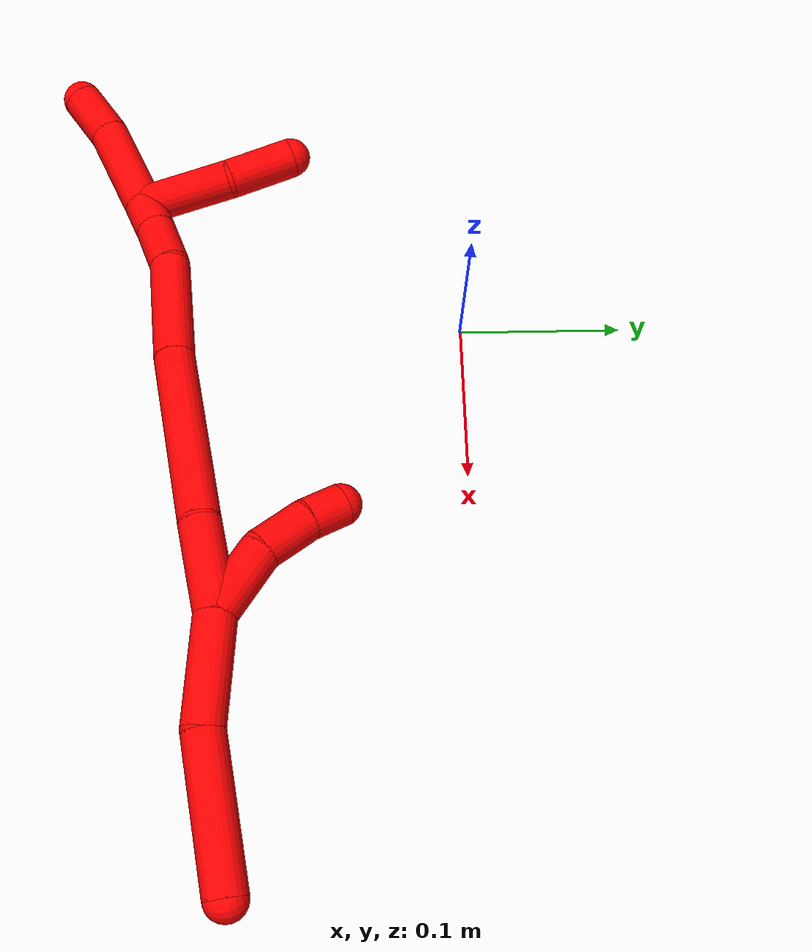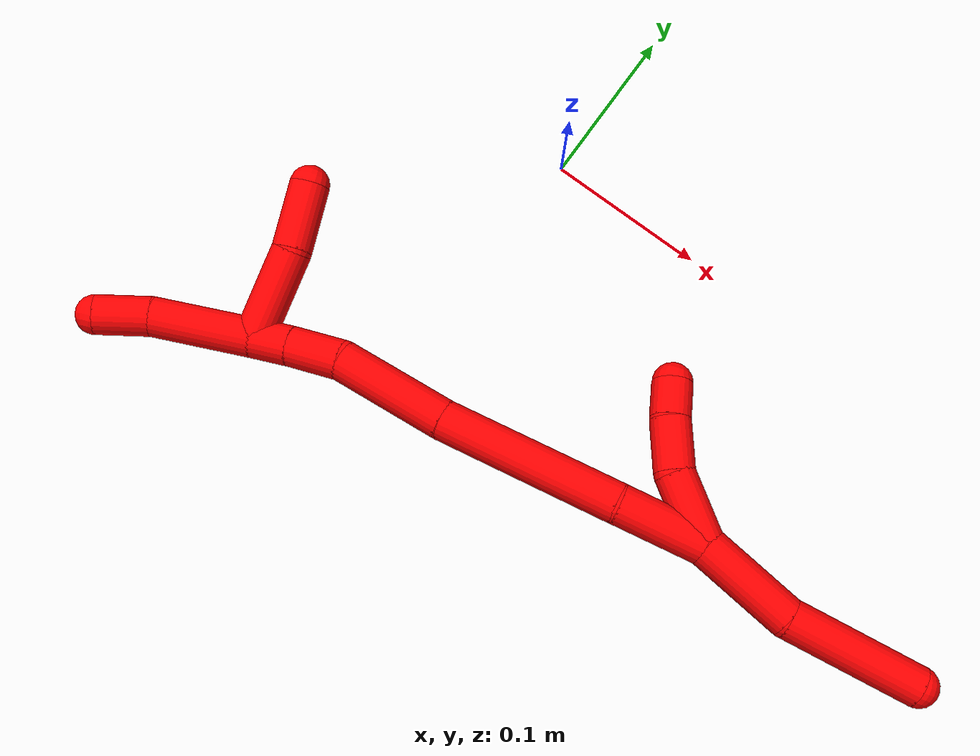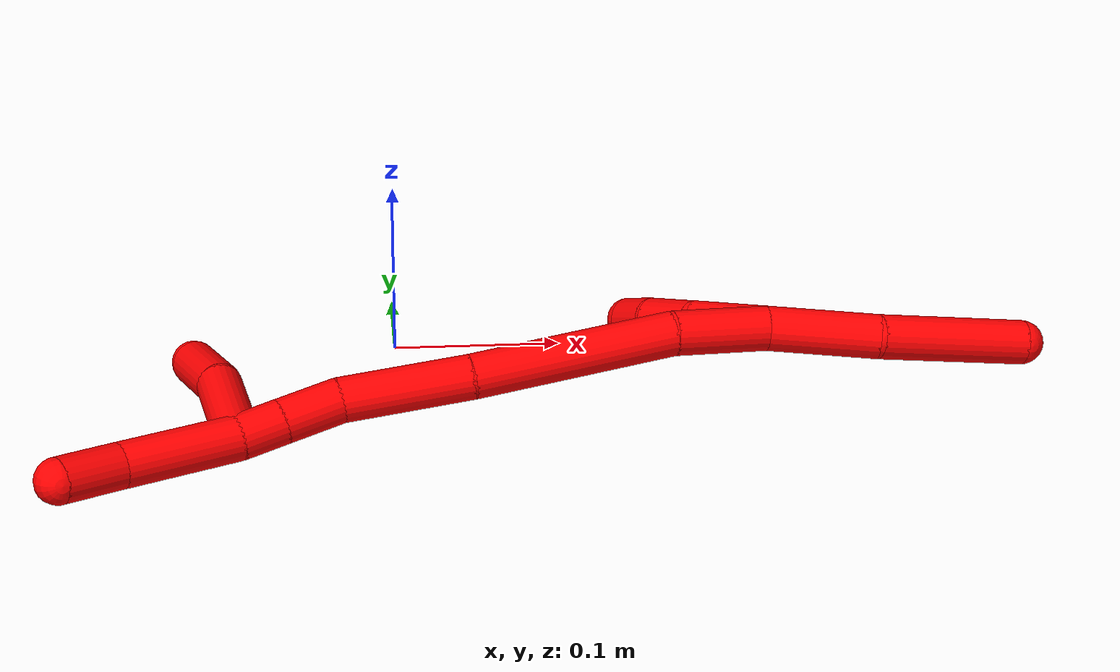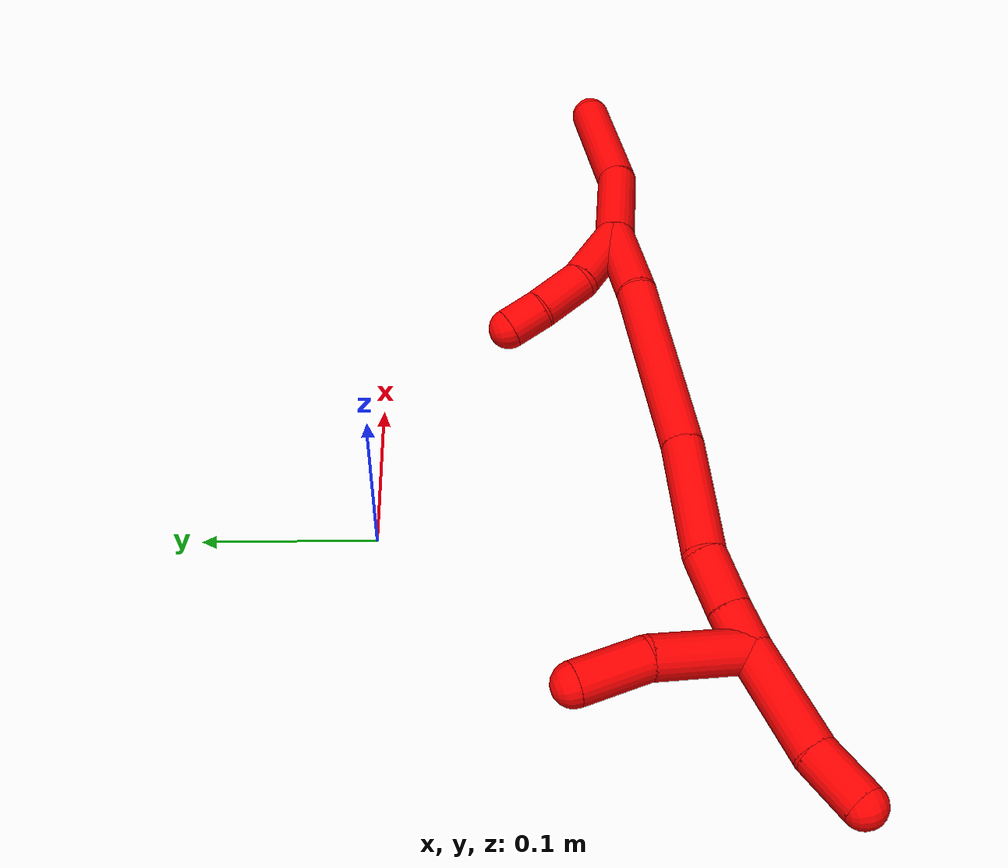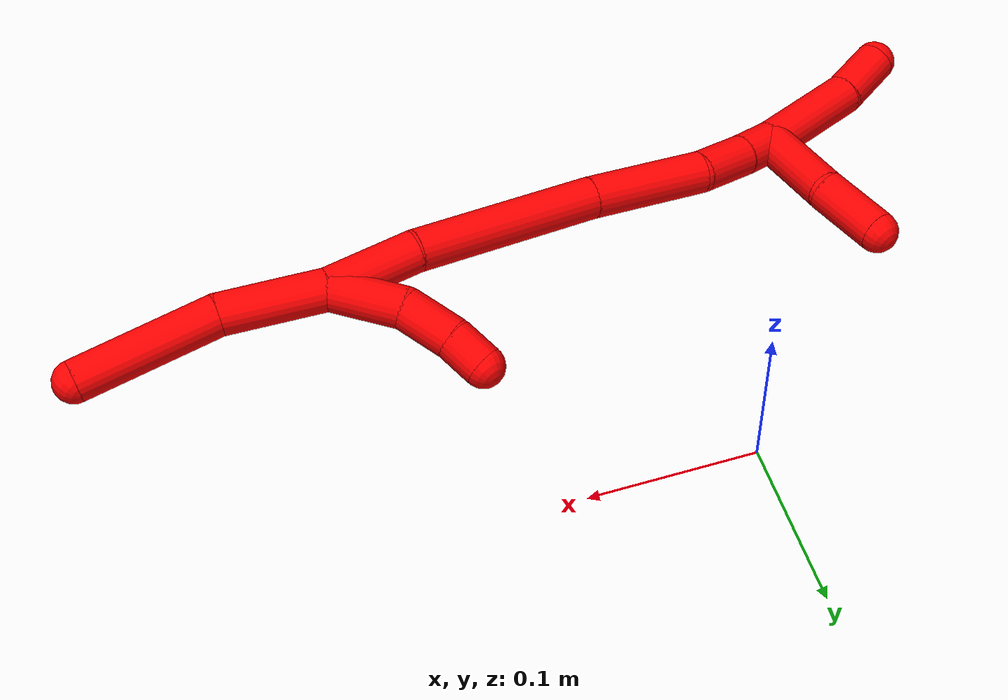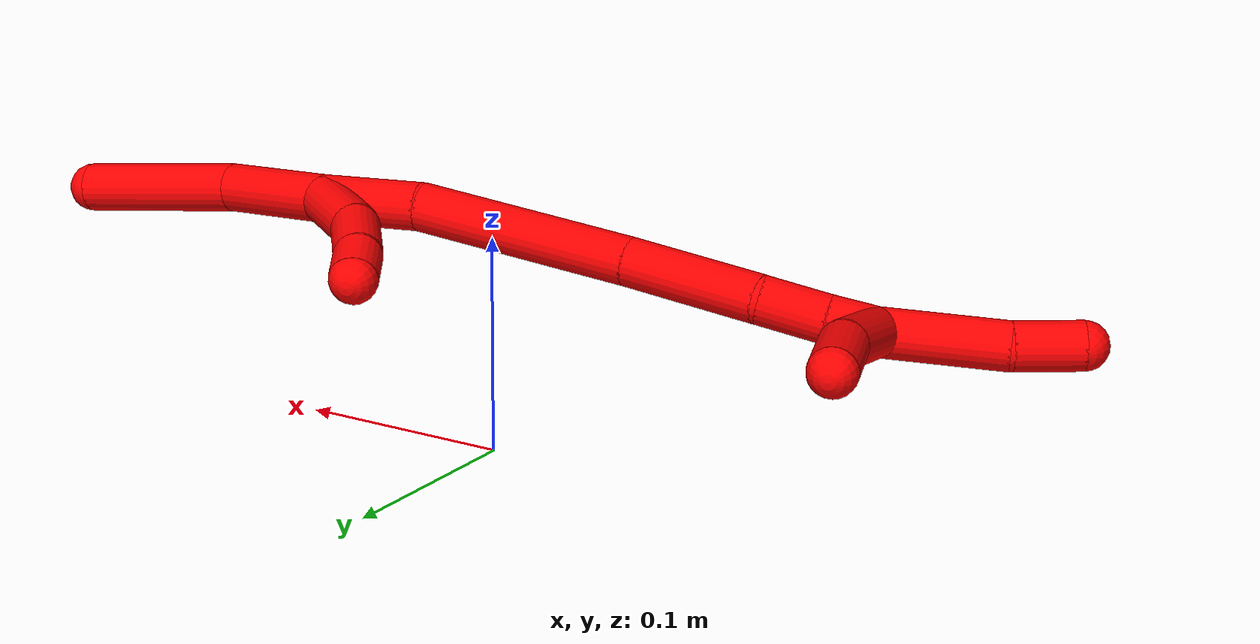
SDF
<sdf version="1.7">
 <world name="default">
  <model name="2">
   <static>0</static>
   <link name="2">
    <collision name="collision-cylinder-e_1_2_8">
     <pose>0.028937 -0.001935 0.012354 0.155394 1.1629 0.102248</pose>
     <geometry><cylinder><radius>0.0125</radius><length>0.063046</length></cylinder></geometry>
     <surface>
      <friction><ode><mu>1.16</mu><mu2>1.16</mu2><slip1>0</slip1><slip2>0</slip2></ode></friction>
      <contact><ode><kp>1e+06</kp><kd>1</kd><max_vel>0</max_vel><min_depth>0.001</min_depth></ode></contact>
     </surface>
    </collision>
    <visual name="visual-cylinder-e_1_2_8">
     <pose>0.028937 -0.001935 0.012354 0.155394 1.1629 0.102248</pose>
     <geometry><cylinder><radius>0.0125</radius><length>0.063046</length></cylinder></geometry>
     <material><ambient>1 0 0 1</ambient></material>
    </visual>
    <collision name="collision-cylinder-e_2_8_6">
     <pose>0.10068 -0.006862 0.0317 0.404185 1.39496 0.340076</pose>
     <geometry><cylinder><radius>0.0125</radius><length>0.086954</length></cylinder></geometry>
     <surface>
      <friction><ode><mu>1.16</mu><mu2>1.16</mu2><slip1>0</slip1><slip2>0</slip2></ode></friction>
      <contact><ode><kp>1e+06</kp><kd>1</kd><max_vel>0</max_vel><min_depth>0.001</min_depth></ode></contact>
     </surface>
    </collision>
    <visual name="visual-cylinder-e_2_8_6">
     <pose>0.10068 -0.006862 0.0317 0.404185 1.39496 0.340076</pose>
     <geometry><cylinder><radius>0.0125</radius><length>0.086954</length></cylinder></geometry>
     <material><ambient>1 0 0 1</ambient></material>
    </visual>
    <collision name="collision-cylinder-e_1_2_9">
     <pose>-0.013802 -0.000658 -0.017365 3.10371 -0.671216 -3.03307</pose>
     <geometry><cylinder><radius>0.0125</radius><length>0.044383</length></cylinder></geometry>
     <surface>
      <friction><ode><mu>1.16</mu><mu2>1.16</mu2><slip1>0</slip1><slip2>0</slip2></ode></friction>
      <contact><ode><kp>1e+06</kp><kd>1</kd><max_vel>0</max_vel><min_depth>0.001</min_depth></ode></contact>
     </surface>
    </collision>
    <visual name="visual-cylinder-e_1_2_9">
     <pose>-0.013802 -0.000658 -0.017365 3.10371 -0.671216 -3.03307</pose>
     <geometry><cylinder><radius>0.0125</radius><length>0.044383</length></cylinder></geometry>
     <material><ambient>1 0 0 1</ambient></material>
    </visual>
    <collision name="collision-cylinder-e_2_9_10">
     <pose>-0.03299 -0.002816 -0.050046 3.04397 -0.336707 -2.58186</pose>
     <geometry><cylinder><radius>0.0125</radius><length>0.03261</length></cylinder></geometry>
     <surface>
      <friction><ode><mu>1.16</mu><mu2>1.16</mu2><slip1>0</slip1><slip2>0</slip2></ode></friction>
      <contact><ode><kp>1e+06</kp><kd>1</kd><max_vel>0</max_vel><min_depth>0.001</min_depth></ode></contact>
     </surface>
    </collision>
    <visual name="visual-cylinder-e_2_9_10">
     <pose>-0.03299 -0.002816 -0.050046 3.04397 -0.336707 -2.58186</pose>
     <geometry><cylinder><radius>0.0125</radius><length>0.03261</length></cylinder></geometry>
     <material><ambient>1 0 0 1</ambient></material>
    </visual>
    <collision name="collision-cylinder-e_3_10_5">
     <pose>-0.040515 -0.006147 -0.076516 2.97891 -0.186904 -1.70986</pose>
     <geometry><cylinder><radius>0.0125</radius><length>0.023008</length></cylinder></geometry>
     <surface>
      <friction><ode><mu>1.16</mu><mu2>1.16</mu2><slip1>0</slip1><slip2>0</slip2></ode></friction>
      <contact><ode><kp>1e+06</kp><kd>1</kd><max_vel>0</max_vel><min_depth>0.001</min_depth></ode></contact>
     </surface>
    </collision>
    <visual name="visual-cylinder-e_3_10_5">
     <pose>-0.040515 -0.006147 -0.076516 2.97891 -0.186904 -1.70986</pose>
     <geometry><cylinder><radius>0.0125</radius><length>0.023008</length></cylinder></geometry>
     <material><ambient>1 0 0 1</ambient></material>
    </visual>
    <collision name="collision-cylinder-e_1_2_11">
     <pose>-0.027071 -0.000445 -0.003708 3.02217 -1.43369 -3.00461</pose>
     <geometry><cylinder><radius>0.0125</radius><length>0.054654</length></cylinder></geometry>
     <surface>
      <friction><ode><mu>1.16</mu><mu2>1.16</mu2><slip1>0</slip1><slip2>0</slip2></ode></friction>
      <contact><ode><kp>1e+06</kp><kd>1</kd><max_vel>0</max_vel><min_depth>0.001</min_depth></ode></contact>
     </surface>
    </collision>
    <visual name="visual-cylinder-e_1_2_11">
     <pose>-0.027071 -0.000445 -0.003708 3.02217 -1.43369 -3.00461</pose>
     <geometry><cylinder><radius>0.0125</radius><length>0.054654</length></cylinder></geometry>
     <material><ambient>1 0 0 1</ambient></material>
    </visual>
    <collision name="collision-cylinder-e_2_11_12">
     <pose>-0.109686 -0.01107 -0.016851 2.31819 -1.32594 -2.12185</pose>
     <geometry><cylinder><radius>0.0125</radius><length>0.114503</length></cylinder></geometry>
     <surface>
      <friction><ode><mu>1.16</mu><mu2>1.16</mu2><slip1>0</slip1><slip2>0</slip2></ode></friction>
      <contact><ode><kp>1e+06</kp><kd>1</kd><max_vel>0</max_vel><min_depth>0.001</min_depth></ode></contact>
     </surface>
    </collision>
    <visual name="visual-cylinder-e_2_11_12">
     <pose>-0.109686 -0.01107 -0.016851 2.31819 -1.32594 -2.12185</pose>
     <geometry><cylinder><radius>0.0125</radius><length>0.114503</length></cylinder></geometry>
     <material><ambient>1 0 0 1</ambient></material>
    </visual>
    <collision name="collision-cylinder-e_3_12_13">
     <pose>-0.199624 -0.027023 -0.035099 2.56164 -1.2735 -2.37456</pose>
     <geometry><cylinder><radius>0.0125</radius><length>0.071944</length></cylinder></geometry>
     <surface>
      <friction><ode><mu>1.16</mu><mu2>1.16</mu2><slip1>0</slip1><slip2>0</slip2></ode></friction>
      <contact><ode><kp>1e+06</kp><kd>1</kd><max_vel>0</max_vel><min_depth>0.001</min_depth></ode></contact>
     </surface>
    </collision>
    <visual name="visual-cylinder-e_3_12_13">
     <pose>-0.199624 -0.027023 -0.035099 2.56164 -1.2735 -2.37456</pose>
     <geometry><cylinder><radius>0.0125</radius><length>0.071944</length></cylinder></geometry>
     <material><ambient>1 0 0 1</ambient></material>
    </visual>
    <collision name="collision-cylinder-e_4_13_14">
     <pose>-0.250278 -0.037493 -0.044159 1.62293 -1.28936 -1.33981</pose>
     <geometry><cylinder><radius>0.0125</radius><length>0.033852</length></cylinder></geometry>
     <surface>
      <friction><ode><mu>1.16</mu><mu2>1.16</mu2><slip1>0</slip1><slip2>0</slip2></ode></friction>
      <contact><ode><kp>1e+06</kp><kd>1</kd><max_vel>0</max_vel><min_depth>0.001</min_depth></ode></contact>
     </surface>
    </collision>
    <visual name="visual-cylinder-e_4_13_14">
     <pose>-0.250278 -0.037493 -0.044159 1.62293 -1.28936 -1.33981</pose>
     <geometry><cylinder><radius>0.0125</radius><length>0.033852</length></cylinder></geometry>
     <material><ambient>1 0 0 1</ambient></material>
    </visual>
    <collision name="collision-cylinder-e_5_14_1">
     <pose>-0.278611 -0.045483 -0.043964 1.43819 -1.30206 -1.17641</pose>
     <geometry><cylinder><radius>0.0125</radius><length>0.025046</length></cylinder></geometry>
     <surface>
      <friction><ode><mu>1.16</mu><mu2>1.16</mu2><slip1>0</slip1><slip2>0</slip2></ode></friction>
      <contact><ode><kp>1e+06</kp><kd>1</kd><max_vel>0</max_vel><min_depth>0.001</min_depth></ode></contact>
     </surface>
    </collision>
    <visual name="visual-cylinder-e_5_14_1">
     <pose>-0.278611 -0.045483 -0.043964 1.43819 -1.30206 -1.17641</pose>
     <geometry><cylinder><radius>0.0125</radius><length>0.025046</length></cylinder></geometry>
     <material><ambient>1 0 0 1</ambient></material>
    </visual>
    <collision name="collision-cylinder-e_1_1_15">
     <pose>-0.322769 -0.052925 -0.040875 1.00213 -1.41862 -0.878879</pose>
     <geometry><cylinder><radius>0.0125</radius><length>0.064918</length></cylinder></geometry>
     <surface>
      <friction><ode><mu>1.16</mu><mu2>1.16</mu2><slip1>0</slip1><slip2>0</slip2></ode></friction>
      <contact><ode><kp>1e+06</kp><kd>1</kd><max_vel>0</max_vel><min_depth>0.001</min_depth></ode></contact>
     </surface>
    </collision>
    <visual name="visual-cylinder-e_1_1_15">
     <pose>-0.322769 -0.052925 -0.040875 1.00213 -1.41862 -0.878879</pose>
     <geometry><cylinder><radius>0.0125</radius><length>0.064918</length></cylinder></geometry>
     <material><ambient>1 0 0 1</ambient></material>
    </visual>
    <collision name="collision-cylinder-e_2_15_4">
     <pose>-0.371711 -0.058454 -0.033581 0.289451 -1.29093 -0.218637</pose>
     <geometry><cylinder><radius>0.0125</radius><length>0.035082</length></cylinder></geometry>
     <surface>
      <friction><ode><mu>1.16</mu><mu2>1.16</mu2><slip1>0</slip1><slip2>0</slip2></ode></friction>
      <contact><ode><kp>1e+06</kp><kd>1</kd><max_vel>0</max_vel><min_depth>0.001</min_depth></ode></contact>
     </surface>
    </collision>
    <visual name="visual-cylinder-e_2_15_4">
     <pose>-0.371711 -0.058454 -0.033581 0.289451 -1.29093 -0.218637</pose>
     <geometry><cylinder><radius>0.0125</radius><length>0.035082</length></cylinder></geometry>
     <material><ambient>1 0 0 1</ambient></material>
    </visual>
    <collision name="collision-cylinder-e_1_1_16">
     <pose>-0.287782 -0.04031 -0.071166 -2.84431 0.100079 -0.6455</pose>
     <geometry><cylinder><radius>0.0125</radius><length>0.058109</length></cylinder></geometry>
     <surface>
      <friction><ode><mu>1.16</mu><mu2>1.16</mu2><slip1>0</slip1><slip2>0</slip2></ode></friction>
      <contact><ode><kp>1e+06</kp><kd>1</kd><max_vel>0</max_vel><min_depth>0.001</min_depth></ode></contact>
     </surface>
    </collision>
    <visual name="visual-cylinder-e_1_1_16">
     <pose>-0.287782 -0.04031 -0.071166 -2.84431 0.100079 -0.6455</pose>
     <geometry><cylinder><radius>0.0125</radius><length>0.058109</length></cylinder></geometry>
     <material><ambient>1 0 0 1</ambient></material>
    </visual>
    <collision name="collision-cylinder-e_2_16_3">
     <pose>-0.286181 -0.02969 -0.119601 -3.03848 -0.06221 1.08519</pose>
     <geometry><cylinder><radius>0.0125</radius><length>0.041891</length></cylinder></geometry>
     <surface>
      <friction><ode><mu>1.16</mu><mu2>1.16</mu2><slip1>0</slip1><slip2>0</slip2></ode></friction>
      <contact><ode><kp>1e+06</kp><kd>1</kd><max_vel>0</max_vel><min_depth>0.001</min_depth></ode></contact>
     </surface>
    </collision>
    <visual name="visual-cylinder-e_2_16_3">
     <pose>-0.286181 -0.02969 -0.119601 -3.03848 -0.06221 1.08519</pose>
     <geometry><cylinder><radius>0.0125</radius><length>0.041891</length></cylinder></geometry>
     <material><ambient>1 0 0 1</ambient></material>
    </visual>
    <collision name="collision-sphere-3">
     <pose>-0.287483 -0.027539 -0.140394 0 -0 0</pose>
     <geometry><sphere><radius>0.0125</radius></sphere></geometry>
     <surface>
      <friction><ode><mu>1.16</mu><mu2>1.16</mu2><slip1>0</slip1><slip2>0</slip2></ode></friction>
      <contact><ode><kp>1e+06</kp><kd>1</kd><max_vel>0</max_vel><min_depth>0.001</min_depth></ode></contact>
     </surface>
    </collision>
    <visual name="visual-sphere-3">
     <pose>-0.287483 -0.027539 -0.140394 0 -0 0</pose>
     <geometry><sphere><radius>0.0125</radius></sphere></geometry>
     <material><ambient>1 0 0 1</ambient></material>
    </visual>
    <collision name="collision-sphere-16">
     <pose>-0.284879 -0.031842 -0.098807 0 -0 0</pose>
     <geometry><sphere><radius>0.0125</radius></sphere></geometry>
     <surface>
      <friction><ode><mu>1.16</mu><mu2>1.16</mu2><slip1>0</slip1><slip2>0</slip2></ode></friction>
      <contact><ode><kp>1e+06</kp><kd>1</kd><max_vel>0</max_vel><min_depth>0.001</min_depth></ode></contact>
     </surface>
    </collision>
    <visual name="visual-sphere-16">
     <pose>-0.284879 -0.031842 -0.098807 0 -0 0</pose>
     <geometry><sphere><radius>0.0125</radius></sphere></geometry>
     <material><ambient>1 0 0 1</ambient></material>
    </visual>
    <collision name="collision-sphere-4">
     <pose>-0.38857 -0.059837 -0.028937 0 -0 0</pose>
     <geometry><sphere><radius>0.0125</radius></sphere></geometry>
     <surface>
      <friction><ode><mu>1.16</mu><mu2>1.16</mu2><slip1>0</slip1><slip2>0</slip2></ode></friction>
      <contact><ode><kp>1e+06</kp><kd>1</kd><max_vel>0</max_vel><min_depth>0.001</min_depth></ode></contact>
     </surface>
    </collision>
    <visual name="visual-sphere-4">
     <pose>-0.38857 -0.059837 -0.028937 0 -0 0</pose>
     <geometry><sphere><radius>0.0125</radius></sphere></geometry>
     <material><ambient>1 0 0 1</ambient></material>
    </visual>
    <collision name="collision-sphere-15">
     <pose>-0.354853 -0.057071 -0.038225 0 -0 0</pose>
     <geometry><sphere><radius>0.0125</radius></sphere></geometry>
     <surface>
      <friction><ode><mu>1.16</mu><mu2>1.16</mu2><slip1>0</slip1><slip2>0</slip2></ode></friction>
      <contact><ode><kp>1e+06</kp><kd>1</kd><max_vel>0</max_vel><min_depth>0.001</min_depth></ode></contact>
     </surface>
    </collision>
    <visual name="visual-sphere-15">
     <pose>-0.354853 -0.057071 -0.038225 0 -0 0</pose>
     <geometry><sphere><radius>0.0125</radius></sphere></geometry>
     <material><ambient>1 0 0 1</ambient></material>
    </visual>
    <collision name="collision-sphere-1">
     <pose>-0.290685 -0.048779 -0.043524 0 -0 0</pose>
     <geometry><sphere><radius>0.0125</radius></sphere></geometry>
     <surface>
      <friction><ode><mu>1.16</mu><mu2>1.16</mu2><slip1>0</slip1><slip2>0</slip2></ode></friction>
      <contact><ode><kp>1e+06</kp><kd>1</kd><max_vel>0</max_vel><min_depth>0.001</min_depth></ode></contact>
     </surface>
    </collision>
    <visual name="visual-sphere-1">
     <pose>-0.290685 -0.048779 -0.043524 0 -0 0</pose>
     <geometry><sphere><radius>0.0125</radius></sphere></geometry>
     <material><ambient>1 0 0 1</ambient></material>
    </visual>
    <collision name="collision-sphere-14">
     <pose>-0.266538 -0.042187 -0.044404 0 -0 0</pose>
     <geometry><sphere><radius>0.0125</radius></sphere></geometry>
     <surface>
      <friction><ode><mu>1.16</mu><mu2>1.16</mu2><slip1>0</slip1><slip2>0</slip2></ode></friction>
      <contact><ode><kp>1e+06</kp><kd>1</kd><max_vel>0</max_vel><min_depth>0.001</min_depth></ode></contact>
     </surface>
    </collision>
    <visual name="visual-sphere-14">
     <pose>-0.266538 -0.042187 -0.044404 0 -0 0</pose>
     <geometry><sphere><radius>0.0125</radius></sphere></geometry>
     <material><ambient>1 0 0 1</ambient></material>
    </visual>
    <collision name="collision-sphere-13">
     <pose>-0.234018 -0.032798 -0.043914 0 -0 0</pose>
     <geometry><sphere><radius>0.0125</radius></sphere></geometry>
     <surface>
      <friction><ode><mu>1.16</mu><mu2>1.16</mu2><slip1>0</slip1><slip2>0</slip2></ode></friction>
      <contact><ode><kp>1e+06</kp><kd>1</kd><max_vel>0</max_vel><min_depth>0.001</min_depth></ode></contact>
     </surface>
    </collision>
    <visual name="visual-sphere-13">
     <pose>-0.234018 -0.032798 -0.043914 0 -0 0</pose>
     <geometry><sphere><radius>0.0125</radius></sphere></geometry>
     <material><ambient>1 0 0 1</ambient></material>
    </visual>
    <collision name="collision-sphere-12">
     <pose>-0.16523 -0.021249 -0.026284 0 -0 0</pose>
     <geometry><sphere><radius>0.0125</radius></sphere></geometry>
     <surface>
      <friction><ode><mu>1.16</mu><mu2>1.16</mu2><slip1>0</slip1><slip2>0</slip2></ode></friction>
      <contact><ode><kp>1e+06</kp><kd>1</kd><max_vel>0</max_vel><min_depth>0.001</min_depth></ode></contact>
     </surface>
    </collision>
    <visual name="visual-sphere-12">
     <pose>-0.16523 -0.021249 -0.026284 0 -0 0</pose>
     <geometry><sphere><radius>0.0125</radius></sphere></geometry>
     <material><ambient>1 0 0 1</ambient></material>
    </visual>
    <collision name="collision-sphere-11">
     <pose>-0.054142 -0.00089 -0.007417 0 -0 0</pose>
     <geometry><sphere><radius>0.0125</radius></sphere></geometry>
     <surface>
      <friction><ode><mu>1.16</mu><mu2>1.16</mu2><slip1>0</slip1><slip2>0</slip2></ode></friction>
      <contact><ode><kp>1e+06</kp><kd>1</kd><max_vel>0</max_vel><min_depth>0.001</min_depth></ode></contact>
     </surface>
    </collision>
    <visual name="visual-sphere-11">
     <pose>-0.054142 -0.00089 -0.007417 0 -0 0</pose>
     <geometry><sphere><radius>0.0125</radius></sphere></geometry>
     <material><ambient>1 0 0 1</ambient></material>
    </visual>
    <collision name="collision-sphere-8">
     <pose>0.057874 -0.003871 0.024708 0 -0 0</pose>
     <geometry><sphere><radius>0.0125</radius></sphere></geometry>
     <surface>
      <friction><ode><mu>1.16</mu><mu2>1.16</mu2><slip1>0</slip1><slip2>0</slip2></ode></friction>
      <contact><ode><kp>1e+06</kp><kd>1</kd><max_vel>0</max_vel><min_depth>0.001</min_depth></ode></contact>
     </surface>
    </collision>
    <visual name="visual-sphere-8">
     <pose>0.057874 -0.003871 0.024708 0 -0 0</pose>
     <geometry><sphere><radius>0.0125</radius></sphere></geometry>
     <material><ambient>1 0 0 1</ambient></material>
    </visual>
    <collision name="collision-sphere-2">
     <geometry><sphere><radius>0.0125</radius></sphere></geometry>
     <surface>
      <friction><ode><mu>1.16</mu><mu2>1.16</mu2><slip1>0</slip1><slip2>0</slip2></ode></friction>
      <contact><ode><kp>1e+06</kp><kd>1</kd><max_vel>0</max_vel><min_depth>0.001</min_depth></ode></contact>
     </surface>
    </collision>
    <visual name="visual-sphere-2">
     <geometry><sphere><radius>0.0125</radius></sphere></geometry>
     <material><ambient>1 0 0 1</ambient></material>
    </visual>
    <collision name="collision-sphere-9">
     <pose>-0.027603 -0.001316 -0.03473 0 -0 0</pose>
     <geometry><sphere><radius>0.0125</radius></sphere></geometry>
     <surface>
      <friction><ode><mu>1.16</mu><mu2>1.16</mu2><slip1>0</slip1><slip2>0</slip2></ode></friction>
      <contact><ode><kp>1e+06</kp><kd>1</kd><max_vel>0</max_vel><min_depth>0.001</min_depth></ode></contact>
     </surface>
    </collision>
    <visual name="visual-sphere-9">
     <pose>-0.027603 -0.001316 -0.03473 0 -0 0</pose>
     <geometry><sphere><radius>0.0125</radius></sphere></geometry>
     <material><ambient>1 0 0 1</ambient></material>
    </visual>
    <collision name="collision-sphere-6">
     <pose>0.143487 -0.009853 0.038693 0 -0 0</pose>
     <geometry><sphere><radius>0.0125</radius></sphere></geometry>
     <surface>
      <friction><ode><mu>1.16</mu><mu2>1.16</mu2><slip1>0</slip1><slip2>0</slip2></ode></friction>
      <contact><ode><kp>1e+06</kp><kd>1</kd><max_vel>0</max_vel><min_depth>0.001</min_depth></ode></contact>
     </surface>
    </collision>
    <visual name="visual-sphere-6">
     <pose>0.143487 -0.009853 0.038693 0 -0 0</pose>
     <geometry><sphere><radius>0.0125</radius></sphere></geometry>
     <material><ambient>1 0 0 1</ambient></material>
    </visual>
    <collision name="collision-sphere-10">
     <pose>-0.038377 -0.004316 -0.065362 0 -0 0</pose>
     <geometry><sphere><radius>0.0125</radius></sphere></geometry>
     <surface>
      <friction><ode><mu>1.16</mu><mu2>1.16</mu2><slip1>0</slip1><slip2>0</slip2></ode></friction>
      <contact><ode><kp>1e+06</kp><kd>1</kd><max_vel>0</max_vel><min_depth>0.001</min_depth></ode></contact>
     </surface>
    </collision>
    <visual name="visual-sphere-10">
     <pose>-0.038377 -0.004316 -0.065362 0 -0 0</pose>
     <geometry><sphere><radius>0.0125</radius></sphere></geometry>
     <material><ambient>1 0 0 1</ambient></material>
    </visual>
    <collision name="collision-sphere-5">
     <pose>-0.042652 -0.007978 -0.08767 0 -0 0</pose>
     <geometry><sphere><radius>0.0125</radius></sphere></geometry>
     <surface>
      <friction><ode><mu>1.16</mu><mu2>1.16</mu2><slip1>0</slip1><slip2>0</slip2></ode></friction>
      <contact><ode><kp>1e+06</kp><kd>1</kd><max_vel>0</max_vel><min_depth>0.001</min_depth></ode></contact>
     </surface>
    </collision>
    <visual name="visual-sphere-5">
     <pose>-0.042652 -0.007978 -0.08767 0 -0 0</pose>
     <geometry><sphere><radius>0.0125</radius></sphere></geometry>
     <material><ambient>1 0 0 1</ambient></material>
    </visual>
    <inertial>
     <pose>-0.131464 -0.020931 -0.027811 0 -0 0</pose>
     <mass>0.75</mass>
     <inertia>
      <ixx>-6.1e-05</ixx>
      <ixy>0</ixy>
      <ixz>0</ixz>
      <iyy>0.000238</iyy>
      <iyz>0</iyz>
      <izz>0.000158</izz>
     </inertia>
    </inertial>
   </link>
   <pose>0.202829 -0.145322 0.051088 1.47755 0.06126 0.320238</pose>
  </model>
 </world>
</sdf>
